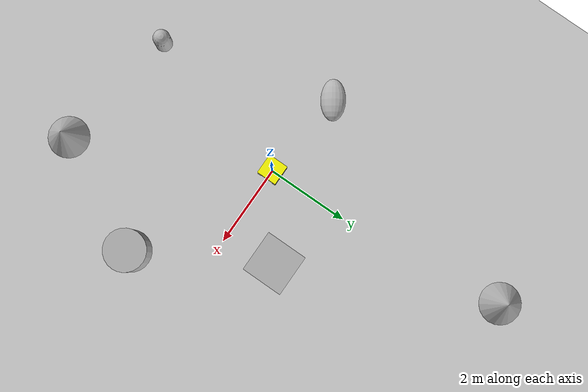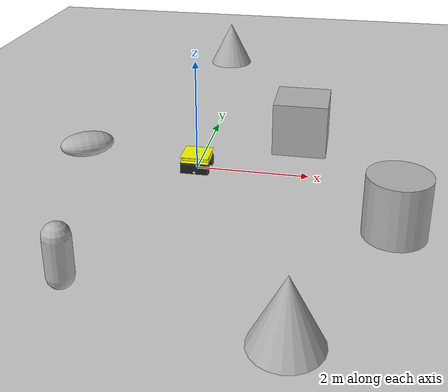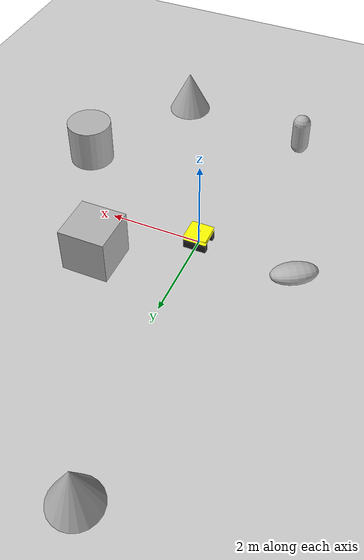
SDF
<sdf version="1.10">
 <world name="empty">
  <model name="ground_plane">
   <static>true</static>
   <link name="link">
    <collision name="collision">
     <geometry><plane><normal>0 0 1</normal><size>100 100</size></plane></geometry>
    </collision>
    <visual name="visual">
     <geometry><plane><normal>0 0 1</normal><size>100 100</size></plane></geometry>
     <material>
      <ambient>0.800000012 0.800000012 0.800000012 1</ambient>
      <diffuse>0.800000012 0.800000012 0.800000012 1</diffuse>
      <specular>0.800000012 0.800000012 0.800000012 1</specular>
     </material>
    </visual>
    <inertial>
     <mass>1</mass>
     <inertia><ixx>1</ixx><ixy>0</ixy><ixz>0</ixz><iyy>1</iyy><iyz>0</iyz><izz>1</izz></inertia>
    </inertial>
   </link>
  </model>
  <model name="box">
   <pose>1.752 1.2827599999999999 0.49999999990199806 -1.488639315533106e-21 3.2640531642924139e-21 -3.5719883845898806e-22</pose>
   <link name="box_link">
    <inertial>
     <inertia><ixx>0.16666</ixx><ixy>0</ixy><ixz>0</ixz><iyy>0.16666</iyy><iyz>0</iyz><izz>0.16666</izz></inertia>
     <mass>1</mass>
    </inertial>
    <collision name="box_collision"><geometry><box><size>1 1 1</size></box></geometry></collision>
    <visual name="box_visual">
     <geometry><box><size>1 1 1</size></box></geometry>
     <material>
      <ambient>0.300000012 0.300000012 0.300000012 1</ambient>
      <diffuse>0.699999988 0.699999988 0.699999988 1</diffuse>
      <specular>1 1 1 1</specular>
     </material>
    </visual>
   </link>
   <static>false</static>
  </model>
  <model name="cone">
   <pose>2.0854200004665295 -4.3763400000201624 0.4999999999393625 4.0324799780473117e-11 1.6174331336598523e-10 1.9725903142275108e-17</pose>
   <link name="cone_link">
    <inertial>
     <inertia>
      <ixx>0.074999999999999997</ixx>
      <ixy>0</ixy>
      <ixz>0</ixz>
      <iyy>0.074999999999999997</iyy>
      <iyz>0</iyz>
      <izz>0.074999999999999997</izz>
     </inertia>
     <mass>1</mass>
    </inertial>
    <collision name="cone_collision">
     <geometry><cone><radius>0.5</radius><length>1</length></cone></geometry>
    </collision>
    <visual name="cone_visual">
     <geometry><cone><radius>0.5</radius><length>1</length></cone></geometry>
     <material>
      <ambient>0.300000012 0.300000012 0.300000012 1</ambient>
      <diffuse>0.699999988 0.699999988 0.699999988 1</diffuse>
      <specular>1 1 1 1</specular>
     </material>
    </visual>
   </link>
   <static>false</static>
  </model>
  <model name="capsule">
   <pose>-0.993529 -3.7913299999999999 0.499999999902001 0 0 0</pose>
   <link name="capsule_link">
    <inertial>
     <inertia>
      <ixx>0.074153999999999998</ixx>
      <ixy>0</ixy>
      <ixz>0</ixz>
      <iyy>0.074153999999999998</iyy>
      <iyz>0</iyz>
      <izz>0.018769000000000001</izz>
     </inertia>
     <mass>1</mass>
    </inertial>
    <collision name="capsule_collision">
     <geometry>
      <capsule><radius>0.20000000000000001</radius><length>0.59999999999999998</length></capsule>
     </geometry>
    </collision>
    <visual name="capsule_visual">
     <geometry>
      <capsule><radius>0.20000000000000001</radius><length>0.59999999999999998</length></capsule>
     </geometry>
     <material>
      <ambient>0.300000012 0.300000012 0.300000012 1</ambient>
      <diffuse>0.699999988 0.699999988 0.699999988 1</diffuse>
      <specular>1 1 1 1</specular>
     </material>
    </visual>
   </link>
   <static>false</static>
  </model>
  <model name="cone_0">
   <pose>-0.47864399953347053 6.0999799999798379 0.4999999999393625 4.0324799781592066e-11 1.6174331336598626e-10 1.972601457039731e-17</pose>
   <link name="cone_link">
    <inertial>
     <inertia>
      <ixx>0.074999999999999997</ixx>
      <ixy>0</ixy>
      <ixz>0</ixz>
      <iyy>0.074999999999999997</iyy>
      <iyz>0</iyz>
      <izz>0.074999999999999997</izz>
     </inertia>
     <mass>1</mass>
    </inertial>
    <collision name="cone_collision">
     <geometry><cone><radius>0.5</radius><length>1</length></cone></geometry>
    </collision>
    <visual name="cone_visual">
     <geometry><cone><radius>0.5</radius><length>1</length></cone></geometry>
     <material>
      <ambient>0.300000012 0.300000012 0.300000012 1</ambient>
      <diffuse>0.699999988 0.699999988 0.699999988 1</diffuse>
      <specular>1 1 1 1</specular>
     </material>
    </visual>
   </link>
   <static>false</static>
  </model>
  <model name="cylinder">
   <pose>3.42333 -1.6306499999999999 0.49999900996310392 -1.4372811659360374e-19 3.3051718121306192e-19 -5.2197762879839653e-21</pose>
   <link name="cylinder_link">
    <inertial>
     <inertia>
      <ixx>0.14580000000000001</ixx>
      <ixy>0</ixy>
      <ixz>0</ixz>
      <iyy>0.14580000000000001</iyy>
      <iyz>0</iyz>
      <izz>0.125</izz>
     </inertia>
     <mass>1</mass>
    </inertial>
    <collision name="cylinder_collision">
     <geometry><cylinder><radius>0.5</radius><length>1</length></cylinder></geometry>
    </collision>
    <visual name="cylinder_visual">
     <geometry><cylinder><radius>0.5</radius><length>1</length></cylinder></geometry>
     <material>
      <ambient>0.300000012 0.300000012 0.300000012 1</ambient>
      <diffuse>0.699999988 0.699999988 0.699999988 1</diffuse>
      <specular>1 1 1 1</specular>
     </material>
    </visual>
   </link>
   <static>false</static>
  </model>
  <model name="ellipsoid">
   <pose>-2.1571499985911049 0.22604500026145305 0.18666800487535987 1.5707999632684932 -1.3774899969772505 -0.98258296395262412</pose>
   <link name="ellipsoid_link">
    <inertial>
     <inertia>
      <ixx>0.068000000000000005</ixx>
      <ixy>0</ixy>
      <ixz>0</ixz>
      <iyy>0.058000000000000003</iyy>
      <iyz>0</iyz>
      <izz>0.025999999999999999</izz>
     </inertia>
     <mass>1</mass>
    </inertial>
    <collision name="ellipsoid_collision">
     <geometry><ellipsoid><radii>0.20000000000000001 0.29999999999999999 0.5</radii></ellipsoid></geometry>
    </collision>
    <visual name="ellipsoid_visual">
     <geometry><ellipsoid><radii>0.20000000000000001 0.29999999999999999 0.5</radii></ellipsoid></geometry>
     <material>
      <ambient>0.300000012 0.300000012 0.300000012 1</ambient>
      <diffuse>0.699999988 0.699999988 0.699999988 1</diffuse>
      <specular>1 1 1 1</specular>
     </material>
    </visual>
   </link>
   <static>false</static>
  </model>
  <model name="my_robot">
   <link name="base_footprint">
    <inertial>
     <pose>0 0 0.1119644670050762 0 0 0</pose>
     <mass>5.9100000000000001</mass>
     <inertia>
      <ixx>0.43630455253807099</ixx>
      <ixy>0</ixy>
      <ixz>0</ixz>
      <iyy>0.43630455253807099</iyy>
      <iyz>0</iyz>
      <izz>0.220003</izz>
     </inertia>
    </inertial>
    <collision name="base_footprint_fixed_joint_lump__base_link_collision">
     <pose>0 0 0.091000000000000011 0 0 0</pose>
     <geometry><box><size>0.315 0.27000000000000002 0.17999999999999999</size></box></geometry>
    </collision>
    <collision name="base_footprint_fixed_joint_lump__imu_link_collision_1">
     <pose>0 0 0.091000000000000011 0 0 0</pose>
     <geometry><box><size>0.02 0.02 0.02</size></box></geometry>
    </collision>
    <collision name="base_footprint_fixed_joint_lump__top_plate_collision_2">
     <pose>0 0 0.1925 0 0 0</pose>
     <geometry><box><size>0.5 0.5 0.0030000000000000001</size></box></geometry>
    </collision>
    <collision name="base_footprint_fixed_joint_lump__lidar_stand_collision_3">
     <pose>0 0 0.24400000000000011 0 0 0</pose>
     <geometry><box><size>0.5 0.29999999999999999 0.10000000000000001</size></box></geometry>
    </collision>
    <collision name="base_footprint_fixed_joint_lump__lidar_plate_collision_4">
     <pose>0 0 0.29549999999999998 0 0 0</pose>
     <geometry><box><size>0.5 0.5 0.0030000000000000001</size></box></geometry>
    </collision>
    <collision name="base_footprint_fixed_joint_lump__lidar_link_collision_5">
     <pose>0 0 0.31200000000000011 0 0 0</pose>
     <geometry>
      <cylinder><length>0.029999999999999999</length><radius>0.025000000000000001</radius></cylinder>
     </geometry>
    </collision>
    <visual name="base_footprint_fixed_joint_lump__base_link_visual">
     <pose>0 0 0.091000000000000011 0 0 0</pose>
     <geometry><box><size>0.34999999999999998 0.29999999999999999 0.20000000000000001</size></box></geometry>
     <material><diffuse>1 1 0 1</diffuse><ambient>1 1 0 1</ambient></material>
    </visual>
    <visual name="base_footprint_fixed_joint_lump__left_track_visual_1">
     <pose>0 0.20000000000000001 0.081000000000000003 0 0 0</pose>
     <geometry><box><size>0.5 0.10000000000000001 0.17999999999999999</size></box></geometry>
     <material><diffuse>0.125 0.125 0.125 1</diffuse><ambient>0.125 0.125 0.125 1</ambient></material>
    </visual>
    <visual name="base_footprint_fixed_joint_lump__right_track_visual_2">
     <pose>0 -0.20000000000000001 0.081000000000000003 0 0 0</pose>
     <geometry><box><size>0.5 0.10000000000000001 0.17999999999999999</size></box></geometry>
     <material><diffuse>0.125 0.125 0.125 1</diffuse><ambient>0.125 0.125 0.125 1</ambient></material>
    </visual>
    <visual name="base_footprint_fixed_joint_lump__imu_link_visual_3">
     <pose>0 0 0.091000000000000011 0 0 0</pose>
     <geometry><box><size>0.02 0.02 0.02</size></box></geometry>
     <material><diffuse>1 0 0 1</diffuse><ambient>1 0 0 1</ambient></material>
    </visual>
    <visual name="base_footprint_fixed_joint_lump__top_plate_visual_4">
     <pose>0 0 0.1925 0 0 0</pose>
     <geometry><box><size>0.5 0.5 0.0030000000000000001</size></box></geometry>
     <material><diffuse>1 1 0 1</diffuse><ambient>1 1 0 1</ambient></material>
    </visual>
    <visual name="base_footprint_fixed_joint_lump__lidar_stand_visual_5">
     <pose>0 0 0.24400000000000011 0 0 0</pose>
     <geometry><box><size>0.5 0.29999999999999999 0.10000000000000001</size></box></geometry>
     <material><diffuse>1 1 0 1</diffuse><ambient>1 1 0 1</ambient></material>
    </visual>
    <visual name="base_footprint_fixed_joint_lump__lidar_plate_visual_6">
     <pose>0 0 0.29549999999999998 0 0 0</pose>
     <geometry><box><size>0.5 0.5 0.0030000000000000001</size></box></geometry>
     <material><diffuse>1 1 0 1</diffuse><ambient>1 1 0 1</ambient></material>
    </visual>
    <visual name="base_footprint_fixed_joint_lump__lidar_link_visual_7">
     <pose>0 0 0.31200000000000011 0 0 0</pose>
     <geometry>
      <cylinder><length>0.029999999999999999</length><radius>0.025000000000000001</radius></cylinder>
     </geometry>
     <material><diffuse>1 0 0 1</diffuse><ambient>1 0 0 1</ambient></material>
    </visual>
    <sensor name="imu_sensor" type="imu">
     <pose>0 0 0.090999999999999998 0 0 0</pose>
     <topic>imu</topic>
     <update_rate>50</update_rate>
     <enable_metrics>false</enable_metrics>
     <imu>
      <orientation_reference_frame>
       <localization>CUSTOM</localization>
       <custom_rpy>0 0 0</custom_rpy>
       <grav_dir_x>1 0 0</grav_dir_x>
      </orientation_reference_frame>
      <angular_velocity>
       <x>
        <noise type="none">
         <mean>0</mean>
         <stddev>0</stddev>
         <bias_mean>0</bias_mean>
         <bias_stddev>0</bias_stddev>
         <dynamic_bias_stddev>0</dynamic_bias_stddev>
         <dynamic_bias_correlation_time>0</dynamic_bias_correlation_time>
         <precision>0</precision>
        </noise>
       </x>
       <y>
        <noise type="none">
         <mean>0</mean>
         <stddev>0</stddev>
         <bias_mean>0</bias_mean>
         <bias_stddev>0</bias_stddev>
         <dynamic_bias_stddev>0</dynamic_bias_stddev>
         <dynamic_bias_correlation_time>0</dynamic_bias_correlation_time>
         <precision>0</precision>
        </noise>
       </y>
       <z>
        <noise type="none">
         <mean>0</mean>
         <stddev>0</stddev>
         <bias_mean>0</bias_mean>
         <bias_stddev>0</bias_stddev>
         <dynamic_bias_stddev>0</dynamic_bias_stddev>
         <dynamic_bias_correlation_time>0</dynamic_bias_correlation_time>
         <precision>0</precision>
        </noise>
       </z>
      </angular_velocity>
      <linear_acceleration>
       <x>
        <noise type="none">
         <mean>0</mean>
         <stddev>0</stddev>
         <bias_mean>0</bias_mean>
         <bias_stddev>0</bias_stddev>
         <dynamic_bias_stddev>0</dynamic_bias_stddev>
         <dynamic_bias_correlation_time>0</dynamic_bias_correlation_time>
         <precision>0</precision>
        </noise>
       </x>
       <y>
        <noise type="none">
         <mean>0</mean>
         <stddev>0</stddev>
         <bias_mean>0</bias_mean>
         <bias_stddev>0</bias_stddev>
         <dynamic_bias_stddev>0</dynamic_bias_stddev>
         <dynamic_bias_correlation_time>0</dynamic_bias_correlation_time>
         <precision>0</precision>
        </noise>
       </y>
       <z>
        <noise type="none">
         <mean>0</mean>
         <stddev>0</stddev>
         <bias_mean>0</bias_mean>
         <bias_stddev>0</bias_stddev>
         <dynamic_bias_stddev>0</dynamic_bias_stddev>
         <dynamic_bias_correlation_time>0</dynamic_bias_correlation_time>
         <precision>0</precision>
        </noise>
       </z>
      </linear_acceleration>
      <enable_orientation>true</enable_orientation>
     </imu>
    </sensor>
    <sensor name="lidar_link" type="gpu_lidar">
     <pose>0 0 0.312 0 0 0</pose>
     <topic>scan</topic>
     <update_rate>10</update_rate>
     <enable_metrics>false</enable_metrics>
     <lidar>
      <scan>
       <horizontal>
        <samples>360</samples>
        <resolution>1</resolution>
        <min_angle>-3.1400000000000001</min_angle>
        <max_angle>3.1400000000000001</max_angle>
       </horizontal>
       <vertical>
        <samples>1</samples>
        <min_angle>0</min_angle>
        <max_angle>0</max_angle>
        <resolution>1</resolution>
       </vertical>
      </scan>
      <range><min>0.10000000000000001</min><max>12</max><resolution>0</resolution></range>
      <noise><type>none</type><mean>0</mean><stddev>0</stddev></noise>
      <visibility_mask>4294967295</visibility_mask>
     </lidar>
    </sensor>
   </link>
   <joint name="left_wheel_joint" type="revolute">
    <parent>base_footprint</parent>
    <child>left_wheel</child>
    <axis>
     <xyz>0 1 0</xyz>
     <limit>
      <lower>-inf</lower>
      <upper>inf</upper>
      <effort>inf</effort>
      <velocity>inf</velocity>
      <stiffness>100000000</stiffness>
      <dissipation>1</dissipation>
     </limit>
     <dynamics>
      <spring_reference>0</spring_reference>
      <spring_stiffness>0</spring_stiffness>
      <damping>0</damping>
      <friction>0</friction>
     </dynamics>
    </axis>
   </joint>
   <link name="left_wheel">
    <pose>-1.9449262597060544e-53 0.2505 0.021000000000000001 -4.0978761586198475e-72 -9.839241506863691e-36 2.0159996594939772e-107</pose>
    <inertial>
     <mass>0.5</mass>
     <inertia><ixx>0.001</ixx><ixy>0</ixy><ixz>0</ixz><iyy>0.001</iyy><iyz>0</iyz><izz>0.001</izz></inertia>
    </inertial>
    <collision name="left_wheel_collision">
     <pose>0 0 0 1.5707963267948959 0 0</pose>
     <geometry><cylinder><length>0.001</length><radius>0.021000000000000001</radius></cylinder></geometry>
    </collision>
    <visual name="left_wheel_visual">
     <pose>0 0 0 1.5707963267948959 0 0</pose>
     <geometry><cylinder><length>0.001</length><radius>0.021000000000000001</radius></cylinder></geometry>
     <material><diffuse>1 1 1 1</diffuse><ambient>1 1 1 1</ambient></material>
    </visual>
   </link>
   <joint name="right_wheel_joint" type="revolute">
    <parent>base_footprint</parent>
    <child>right_wheel</child>
    <axis>
     <xyz>0 1 0</xyz>
     <limit>
      <lower>-inf</lower>
      <upper>inf</upper>
      <effort>inf</effort>
      <velocity>inf</velocity>
      <stiffness>100000000</stiffness>
      <dissipation>1</dissipation>
     </limit>
     <dynamics>
      <spring_reference>0</spring_reference>
      <spring_stiffness>0</spring_stiffness>
      <damping>0</damping>
      <friction>0</friction>
     </dynamics>
    </axis>
   </joint>
   <link name="right_wheel">
    <pose>-1.9449262597060544e-53 -0.2505 0.021000000000000001 4.0979314588342222e-72 9.8393742859286373e-36 2.0160540710775737e-107</pose>
    <inertial>
     <mass>0.5</mass>
     <inertia><ixx>0.001</ixx><ixy>0</ixy><ixz>0</ixz><iyy>0.001</iyy><iyz>0</iyz><izz>0.001</izz></inertia>
    </inertial>
    <collision name="right_wheel_collision">
     <pose>0 0 0 1.5707963267948959 0 0</pose>
     <geometry><cylinder><length>0.001</length><radius>0.021000000000000001</radius></cylinder></geometry>
    </collision>
    <visual name="right_wheel_visual">
     <pose>0 0 0 1.5707963267948959 0 0</pose>
     <geometry><cylinder><length>0.001</length><radius>0.021000000000000001</radius></cylinder></geometry>
     <material><diffuse>1 1 1 1</diffuse><ambient>1 1 1 1</ambient></material>
    </visual>
   </link>
   <plugin name="gz::sim::systems::Sensors" filename="gz-sim-sensors-system"/>
   <plugin name="gz::sim::systems::JointStatePublisher" filename="gz-sim-joint-state-publisher-system">
    <topic>joint_states</topic>
   </plugin>
   <plugin name="gz::sim::systems::DiffDrive" filename="gz-sim-diff-drive-system">
    <left_joint>left_wheel_joint</left_joint>
    <right_joint>right_wheel_joint</right_joint>
    <wheel_separation>0.501</wheel_separation>
    <wheel_radius>0.021</wheel_radius>
    <topic>cmd_vel</topic>
    <odometry_topic>odom</odometry_topic>
    <tf_topic>tf</tf_topic>
    <frame_id>odom</frame_id>
    <child_frame_id>base_footprint</child_frame_id>
   </plugin>
   <frame name="base_to_left_track" attached_to="base_link">
    <pose>0 0.20000000000000001 -0.010000000000000011 0 0 0</pose>
   </frame>
   <frame name="left_track" attached_to="base_to_left_track"/>
   <frame name="base_to_right_track" attached_to="base_link">
    <pose>0 -0.20000000000000001 -0.010000000000000011 0 0 0</pose>
   </frame>
   <frame name="right_track" attached_to="base_to_right_track"/>
   <frame name="imu_joint" attached_to="base_link"/>
   <frame name="imu_link" attached_to="imu_joint"/>
   <frame name="lidar_joint" attached_to="lidar_plate"><pose>0 0 0.016500000000000001 0 0 0</pose></frame>
   <frame name="lidar_link" attached_to="lidar_joint"/>
   <frame name="lidar_plate_joint" attached_to="lidar_stand"><pose>0 0 0.051499999999999997 0 0 0</pose></frame>
   <frame name="lidar_plate" attached_to="lidar_plate_joint"/>
   <frame name="lidar_stand_joint" attached_to="top_plate"><pose>0 0 0.051499999999999997 0 0 0</pose></frame>
   <frame name="lidar_stand" attached_to="lidar_stand_joint"/>
   <frame name="top_plate_joint" attached_to="base_link"><pose>0 0 0.10150000000000001 0 0 0</pose></frame>
   <frame name="top_plate" attached_to="top_plate_joint"/>
   <frame name="base_footprint_joint" attached_to="base_footprint">
    <pose>0 0 0.091000000000000011 0 0 0</pose>
   </frame>
   <frame name="base_link" attached_to="base_footprint_joint"/>
   <pose>-1.0420532793527125e-42 3.6835211715178195e-24 -4.5406307580195263e-11 3.0182194539415796e-21 1.1283214961887285e-42 8.3296586546051092e-37</pose>
   <static>false</static>
  </model>
 </world>
</sdf>
